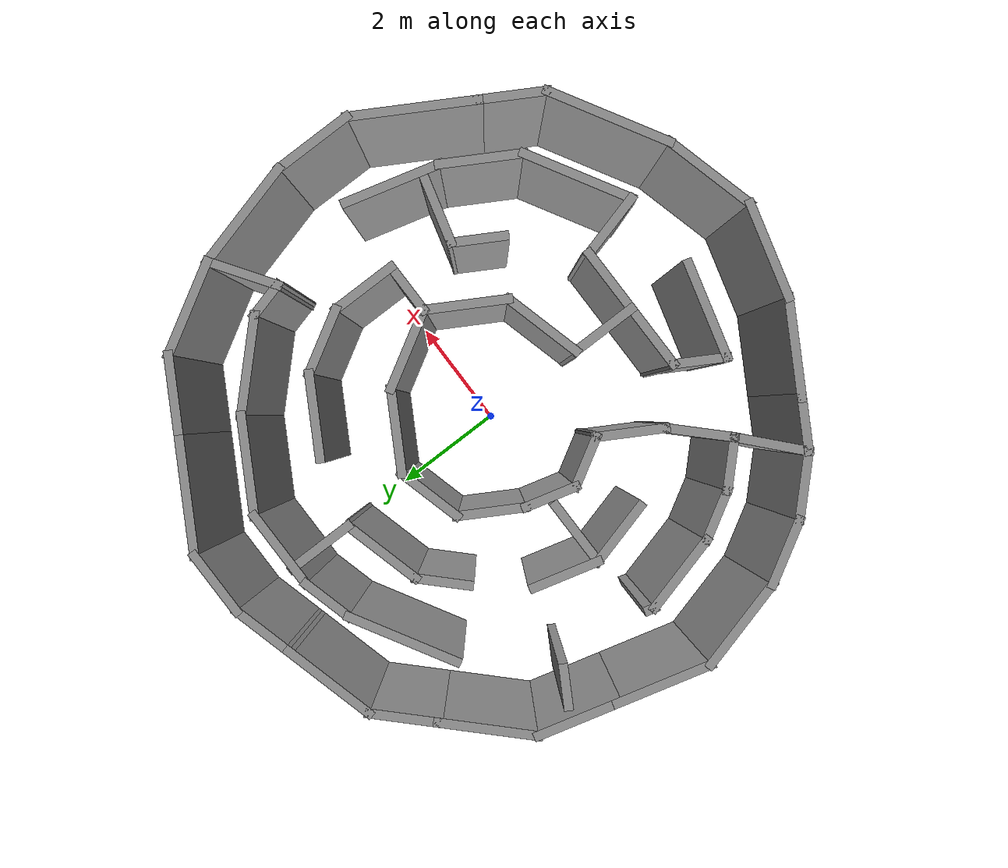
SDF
<?xml version='1.0'?>
<sdf version='1.7'>
  <model name='circleMap'>
    <pose>-0.024629 -0.104277 0 0 -0 0</pose>
    <link name='Wall_0'>
      <collision name='Wall_0_Collision'>
        <geometry>
          <box>
            <size>1.25 0.15 2.5</size>
          </box>
        </geometry>
        <pose>0 0 1.25 0 -0 0</pose>
      </collision>
      <visual name='Wall_0_Visual'>
        <pose>0 0 1.25 0 -0 0</pose>
        <geometry>
          <box>
            <size>1.25 0.15 2.5</size>
          </box>
        </geometry>
        <material>
          <script>
            <uri>file://media/materials/scripts/gazebo.material</uri>
            <name>Gazebo/Grey</name>
          </script>
          <ambient>1 1 1 1</ambient>
        </material>
        <meta>
          <layer>0</layer>
        </meta>
      </visual>
      <pose>0.581259 5.1737 0 0 -0 0</pose>
    </link>
    <link name='Wall_1'>
      <collision name='Wall_1_Collision'>
        <geometry>
          <box>
            <size>2 0.15 2.5</size>
          </box>
        </geometry>
        <pose>0 0 1.25 0 -0 0</pose>
      </collision>
      <visual name='Wall_1_Visual'>
        <pose>0 0 1.25 0 -0 0</pose>
        <geometry>
          <box>
            <size>2 0.15 2.5</size>
          </box>
        </geometry>
        <material>
          <script>
            <uri>file://media/materials/scripts/gazebo.material</uri>
            <name>Gazebo/Grey</name>
          </script>
          <ambient>1 1 1 1</ambient>
        </material>
        <meta>
          <layer>0</layer>
        </meta>
      </visual>
      <pose>1.93233 4.7112 0 0 -0 -0.523599</pose>
    </link>
    <link name='Wall_10'>
      <collision name='Wall_10_Collision'>
        <geometry>
          <box>
            <size>1.75 0.15 2.5</size>
          </box>
        </geometry>
        <pose>0 0 1.25 0 -0 0</pose>
      </collision>
      <visual name='Wall_10_Visual'>
        <pose>0 0 1.25 0 -0 0</pose>
        <geometry>
          <box>
            <size>1.75 0.15 2.5</size>
          </box>
        </geometry>
        <material>
          <script>
            <uri>file://media/materials/scripts/gazebo.material</uri>
            <name>Gazebo/Grey</name>
          </script>
          <ambient>1 1 1 1</ambient>
        </material>
        <meta>
          <layer>0</layer>
        </meta>
      </visual>
      <pose>-0.55552 -4.97724 0 0 -0 2.87979</pose>
    </link>
    <link name='Wall_11'>
      <collision name='Wall_11_Collision'>
        <geometry>
          <box>
            <size>1.75 0.15 2.5</size>
          </box>
        </geometry>
        <pose>0 0 1.25 0 -0 0</pose>
      </collision>
      <visual name='Wall_11_Visual'>
        <pose>0 0 1.25 0 -0 0</pose>
        <geometry>
          <box>
            <size>1.75 0.15 2.5</size>
          </box>
        </geometry>
        <material>
          <script>
            <uri>file://media/materials/scripts/gazebo.material</uri>
            <name>Gazebo/Grey</name>
          </script>
          <ambient>1 1 1 1</ambient>
        </material>
        <meta>
          <layer>0</layer>
        </meta>
      </visual>
      <pose>-2.02108 -4.37019 0 0 -0 2.61799</pose>
    </link>
    <link name='Wall_12'>
      <collision name='Wall_12_Collision'>
        <geometry>
          <box>
            <size>1 0.15 2.5</size>
          </box>
        </geometry>
        <pose>0 0 1.25 0 -0 0</pose>
      </collision>
      <visual name='Wall_12_Visual'>
        <pose>0 0 1.25 0 -0 0</pose>
        <geometry>
          <box>
            <size>1 0.15 2.5</size>
          </box>
        </geometry>
        <material>
          <script>
            <uri>file://media/materials/scripts/gazebo.material</uri>
            <name>Gazebo/Grey</name>
          </script>
          <ambient>1 1 1 1</ambient>
        </material>
        <meta>
          <layer>0</layer>
        </meta>
      </visual>
      <pose>-3.08196 -3.75768 0 0 -0 2.61799</pose>
    </link>
    <link name='Wall_13'>
      <collision name='Wall_13_Collision'>
        <geometry>
          <box>
            <size>1.25 0.15 2.5</size>
          </box>
        </geometry>
        <pose>0 0 1.25 0 -0 0</pose>
      </collision>
      <visual name='Wall_13_Visual'>
        <pose>0 0 1.25 0 -0 0</pose>
        <geometry>
          <box>
            <size>1.25 0.15 2.5</size>
          </box>
        </geometry>
        <material>
          <script>
            <uri>file://media/materials/scripts/gazebo.material</uri>
            <name>Gazebo/Grey</name>
          </script>
          <ambient>1 1 1 1</ambient>
        </material>
        <meta>
          <layer>0</layer>
        </meta>
      </visual>
      <pose>-3.83893 -3.15628 0 0 -0 2.35619</pose>
    </link>
    <link name='Wall_14'>
      <collision name='Wall_14_Collision'>
        <geometry>
          <box>
            <size>1.25 0.15 2.5</size>
          </box>
        </geometry>
        <pose>0 0 1.25 0 -0 0</pose>
      </collision>
      <visual name='Wall_14_Visual'>
        <pose>0 0 1.25 0 -0 0</pose>
        <geometry>
          <box>
            <size>1.25 0.15 2.5</size>
          </box>
        </geometry>
        <material>
          <script>
            <uri>file://media/materials/scripts/gazebo.material</uri>
            <name>Gazebo/Grey</name>
          </script>
          <ambient>1 1 1 1</ambient>
        </material>
        <meta>
          <layer>0</layer>
        </meta>
      </visual>
      <pose>-4.50284 -2.29105 0 0 -0 2.0944</pose>
    </link>
    <link name='Wall_15'>
      <collision name='Wall_15_Collision'>
        <geometry>
          <box>
            <size>1.75 0.15 2.5</size>
          </box>
        </geometry>
        <pose>0 0 1.25 0 -0 0</pose>
      </collision>
      <visual name='Wall_15_Visual'>
        <pose>0 0 1.25 0 -0 0</pose>
        <geometry>
          <box>
            <size>1.75 0.15 2.5</size>
          </box>
        </geometry>
        <material>
          <script>
            <uri>file://media/materials/scripts/gazebo.material</uri>
            <name>Gazebo/Grey</name>
          </script>
          <ambient>1 1 1 1</ambient>
        </material>
        <meta>
          <layer>0</layer>
        </meta>
      </visual>
      <pose>-4.9849 -1.042 0 0 -0 1.8326</pose>
    </link>
    <link name='Wall_16'>
      <collision name='Wall_16_Collision'>
        <geometry>
          <box>
            <size>1.75 0.15 2.5</size>
          </box>
        </geometry>
        <pose>0 0 1.25 0 -0 0</pose>
      </collision>
      <visual name='Wall_16_Visual'>
        <pose>0 0 1.25 0 -0 0</pose>
        <geometry>
          <box>
            <size>1.75 0.15 2.5</size>
          </box>
        </geometry>
        <material>
          <script>
            <uri>file://media/materials/scripts/gazebo.material</uri>
            <name>Gazebo/Grey</name>
          </script>
          <ambient>1 1 1 1</ambient>
        </material>
        <meta>
          <layer>0</layer>
        </meta>
      </visual>
      <pose>-4.9849 0.503482 0 0 -0 1.309</pose>
    </link>
    <link name='Wall_17'>
      <collision name='Wall_17_Collision'>
        <geometry>
          <box>
            <size>1.5 0.15 2.5</size>
          </box>
        </geometry>
        <pose>0 0 1.25 0 -0 0</pose>
      </collision>
      <visual name='Wall_17_Visual'>
        <pose>0 0 1.25 0 -0 0</pose>
        <geometry>
          <box>
            <size>1.5 0.15 2.5</size>
          </box>
        </geometry>
        <material>
          <script>
            <uri>file://media/materials/scripts/gazebo.material</uri>
            <name>Gazebo/Grey</name>
          </script>
          <ambient>1 1 1 1</ambient>
        </material>
        <meta>
          <layer>0</layer>
        </meta>
      </visual>
      <pose>-4.60314 1.92822 0 0 -0 1.309</pose>
    </link>
    <link name='Wall_18'>
      <collision name='Wall_18_Collision'>
        <geometry>
          <box>
            <size>1.75 0.15 2.5</size>
          </box>
        </geometry>
        <pose>0 0 1.25 0 -0 0</pose>
      </collision>
      <visual name='Wall_18_Visual'>
        <pose>0 0 1.25 0 -0 0</pose>
        <geometry>
          <box>
            <size>1.75 0.15 2.5</size>
          </box>
        </geometry>
        <material>
          <script>
            <uri>file://media/materials/scripts/gazebo.material</uri>
            <name>Gazebo/Grey</name>
          </script>
          <ambient>1 1 1 1</ambient>
        </material>
        <meta>
          <layer>0</layer>
        </meta>
      </visual>
      <pose>-3.86275 3.14591 0 0 -0 0.785398</pose>
    </link>
    <link name='Wall_19'>
      <collision name='Wall_19_Collision'>
        <geometry>
          <box>
            <size>1.25 0.15 2.5</size>
          </box>
        </geometry>
        <pose>0 0 1.25 0 -0 0</pose>
      </collision>
      <visual name='Wall_19_Visual'>
        <pose>0 0 1.25 0 -0 0</pose>
        <geometry>
          <box>
            <size>1.25 0.15 2.5</size>
          </box>
        </geometry>
        <material>
          <script>
            <uri>file://media/materials/scripts/gazebo.material</uri>
            <name>Gazebo/Grey</name>
          </script>
          <ambient>1 1 1 1</ambient>
        </material>
        <meta>
          <layer>0</layer>
        </meta>
      </visual>
      <pose>-2.90815 4.1005 0 0 -0 0.785398</pose>
    </link>
    <link name='Wall_2'>
      <collision name='Wall_2_Collision'>
        <geometry>
          <box>
            <size>1.5 0.15 2.5</size>
          </box>
        </geometry>
        <pose>0 0 1.25 0 -0 0</pose>
      </collision>
      <visual name='Wall_2_Visual'>
        <pose>0 0 1.25 0 -0 0</pose>
        <geometry>
          <box>
            <size>1.5 0.15 2.5</size>
          </box>
        </geometry>
        <material>
          <script>
            <uri>file://media/materials/scripts/gazebo.material</uri>
            <name>Gazebo/Grey</name>
          </script>
          <ambient>1 1 1 1</ambient>
        </material>
        <meta>
          <layer>0</layer>
        </meta>
      </visual>
      <pose>3.31797 3.9112 0 0 -0 -0.523599</pose>
    </link>
    <link name='Wall_20'>
      <collision name='Wall_20_Collision'>
        <geometry>
          <box>
            <size>1.75 0.15 2.5</size>
          </box>
        </geometry>
        <pose>0 0 1.25 0 -0 0</pose>
      </collision>
      <visual name='Wall_20_Visual'>
        <pose>0 0 1.25 0 -0 0</pose>
        <geometry>
          <box>
            <size>1.75 0.15 2.5</size>
          </box>
        </geometry>
        <material>
          <script>
            <uri>file://media/materials/scripts/gazebo.material</uri>
            <name>Gazebo/Grey</name>
          </script>
          <ambient>1 1 1 1</ambient>
        </material>
        <meta>
          <layer>0</layer>
        </meta>
      </visual>
      <pose>-1.74651 4.69647 0 0 -0 0.261799</pose>
    </link>
    <link name='Wall_21'>
      <collision name='Wall_21_Collision'>
        <geometry>
          <box>
            <size>1.19071 0.15 2.5</size>
          </box>
        </geometry>
        <pose>0 0 1.25 0 -0 0</pose>
      </collision>
      <visual name='Wall_21_Visual'>
        <pose>0 0 1.25 0 -0 0</pose>
        <geometry>
          <box>
            <size>1.19071 0.15 2.5</size>
          </box>
        </geometry>
        <material>
          <script>
            <uri>file://media/materials/scripts/gazebo.material</uri>
            <name>Gazebo/Grey</name>
          </script>
          <ambient>1 1 1 1</ambient>
        </material>
        <meta>
          <layer>0</layer>
        </meta>
      </visual>
      <pose>-0.471253 5.03861 0 0 -0 0.262619</pose>
    </link>
    <link name='Wall_22'>
      <collision name='Wall_22_Collision'>
        <geometry>
          <box>
            <size>1.25 0.15 2.5</size>
          </box>
        </geometry>
        <pose>0 0 1.25 0 -0 0</pose>
      </collision>
      <visual name='Wall_22_Visual'>
        <pose>0 0 1.25 0 -0 0</pose>
        <geometry>
          <box>
            <size>1.25 0.15 2.5</size>
          </box>
        </geometry>
        <material>
          <script>
            <uri>file://media/materials/scripts/gazebo.material</uri>
            <name>Gazebo/Grey</name>
          </script>
          <ambient>1 1 1 1</ambient>
        </material>
        <meta>
          <layer>0</layer>
        </meta>
      </visual>
      <pose>0.581259 5.1737 0 0 -0 0</pose>
    </link>
    <link name='Wall_24'>
      <collision name='Wall_24_Collision'>
        <geometry>
          <box>
            <size>0.75 0.15 2.5</size>
          </box>
        </geometry>
        <pose>0 0 1.25 0 -0 0</pose>
      </collision>
      <visual name='Wall_24_Visual'>
        <pose>0 0 1.25 0 -0 0</pose>
        <geometry>
          <box>
            <size>0.75 0.15 2.5</size>
          </box>
        </geometry>
        <material>
          <script>
            <uri>file://media/materials/scripts/gazebo.material</uri>
            <name>Gazebo/Grey</name>
          </script>
          <ambient>1 1 1 1</ambient>
        </material>
        <meta>
          <layer>0</layer>
        </meta>
      </visual>
      <pose>-4.08218 1.76703 0 0 -0 -0.523599</pose>
    </link>
    <link name='Wall_26'>
      <collision name='Wall_26_Collision'>
        <geometry>
          <box>
            <size>2 0.15 2.5</size>
          </box>
        </geometry>
        <pose>0 0 1.25 0 -0 0</pose>
      </collision>
      <visual name='Wall_26_Visual'>
        <pose>0 0 1.25 0 -0 0</pose>
        <geometry>
          <box>
            <size>2 0.15 2.5</size>
          </box>
        </geometry>
        <material>
          <script>
            <uri>file://media/materials/scripts/gazebo.material</uri>
            <name>Gazebo/Grey</name>
          </script>
          <ambient>1 1 1 1</ambient>
        </material>
        <meta>
          <layer>0</layer>
        </meta>
      </visual>
      <pose>-1.91258 3.35653 0 0 -0 0.523599</pose>
    </link>
    <link name='Wall_27'>
      <collision name='Wall_27_Collision'>
        <geometry>
          <box>
            <size>1 0.15 2.5</size>
          </box>
        </geometry>
        <pose>0 0 1.25 0 -0 0</pose>
      </collision>
      <visual name='Wall_27_Visual'>
        <pose>0 0 1.25 0 -0 0</pose>
        <geometry>
          <box>
            <size>1 0.15 2.5</size>
          </box>
        </geometry>
        <material>
          <script>
            <uri>file://media/materials/scripts/gazebo.material</uri>
            <name>Gazebo/Grey</name>
          </script>
          <ambient>1 1 1 1</ambient>
        </material>
        <meta>
          <layer>0</layer>
        </meta>
      </visual>
      <pose>-0.700987 3.92903 0 0 -0 0.261799</pose>
    </link>
    <link name='Wall_28'>
      <collision name='Wall_28_Collision'>
        <geometry>
          <box>
            <size>1.5 0.15 2.5</size>
          </box>
        </geometry>
        <pose>0 0 1.25 0 -0 0</pose>
      </collision>
      <visual name='Wall_28_Visual'>
        <pose>0 0 1.25 0 -0 0</pose>
        <geometry>
          <box>
            <size>1.5 0.15 2.5</size>
          </box>
        </geometry>
        <material>
          <script>
            <uri>file://media/materials/scripts/gazebo.material</uri>
            <name>Gazebo/Grey</name>
          </script>
          <ambient>1 1 1 1</ambient>
        </material>
        <meta>
          <layer>0</layer>
        </meta>
      </visual>
      <pose>0.384532 4.03902 0 0 -0 0</pose>
    </link>
    <link name='Wall_29'>
      <collision name='Wall_29_Collision'>
        <geometry>
          <box>
            <size>1.75 0.15 2.5</size>
          </box>
        </geometry>
        <pose>0 0 1.25 0 -0 0</pose>
      </collision>
      <visual name='Wall_29_Visual'>
        <pose>0 0 1.25 0 -0 0</pose>
        <geometry>
          <box>
            <size>1.75 0.15 2.5</size>
          </box>
        </geometry>
        <material>
          <script>
            <uri>file://media/materials/scripts/gazebo.material</uri>
            <name>Gazebo/Grey</name>
          </script>
          <ambient>1 1 1 1</ambient>
        </material>
        <meta>
          <layer>0</layer>
        </meta>
      </visual>
      <pose>1.75235 3.63902 0 0 -0 -0.523599</pose>
    </link>
    <link name='Wall_3'>
      <collision name='Wall_3_Collision'>
        <geometry>
          <box>
            <size>1.75 0.15 2.5</size>
          </box>
        </geometry>
        <pose>0 0 1.25 0 -0 0</pose>
      </collision>
      <visual name='Wall_3_Visual'>
        <pose>0 0 1.25 0 -0 0</pose>
        <geometry>
          <box>
            <size>1.75 0.15 2.5</size>
          </box>
        </geometry>
        <material>
          <script>
            <uri>file://media/materials/scripts/gazebo.material</uri>
            <name>Gazebo/Grey</name>
          </script>
          <ambient>1 1 1 1</ambient>
        </material>
        <meta>
          <layer>0</layer>
        </meta>
      </visual>
      <pose>4.30254 2.88088 0 0 -0 -1.0472</pose>
    </link>
    <link name='Wall_30'>
      <collision name='Wall_30_Collision'>
        <geometry>
          <box>
            <size>1.75 0.15 2.5</size>
          </box>
        </geometry>
        <pose>0 0 1.25 0 -0 0</pose>
      </collision>
      <visual name='Wall_30_Visual'>
        <pose>0 0 1.25 0 -0 0</pose>
        <geometry>
          <box>
            <size>1.75 0.15 2.5</size>
          </box>
        </geometry>
        <material>
          <script>
            <uri>file://media/materials/scripts/gazebo.material</uri>
            <name>Gazebo/Grey</name>
          </script>
          <ambient>1 1 1 1</ambient>
        </material>
        <meta>
          <layer>0</layer>
        </meta>
      </visual>
      <pose>3.01086 2.67334 0 0 -0 -0.785398</pose>
    </link>
    <link name='Wall_31'>
      <collision name='Wall_31_Collision'>
        <geometry>
          <box>
            <size>0.75 0.15 2.5</size>
          </box>
        </geometry>
        <pose>0 0 1.25 0 -0 0</pose>
      </collision>
      <visual name='Wall_31_Visual'>
        <pose>0 0 1.25 0 -0 0</pose>
        <geometry>
          <box>
            <size>0.75 0.15 2.5</size>
          </box>
        </geometry>
        <material>
          <script>
            <uri>file://media/materials/scripts/gazebo.material</uri>
            <name>Gazebo/Grey</name>
          </script>
          <ambient>1 1 1 1</ambient>
        </material>
        <meta>
          <layer>0</layer>
        </meta>
      </visual>
      <pose>3.65419 1.81787 0 0 -0 -1.309</pose>
    </link>
    <link name='Wall_32'>
      <collision name='Wall_32_Collision'>
        <geometry>
          <box>
            <size>1.3238 0.15 2.5</size>
          </box>
        </geometry>
        <pose>0 0 1.25 0 -0 0</pose>
      </collision>
      <visual name='Wall_32_Visual'>
        <pose>0 0 1.25 0 -0 0</pose>
        <geometry>
          <box>
            <size>1.3238 0.15 2.5</size>
          </box>
        </geometry>
        <material>
          <script>
            <uri>file://media/materials/scripts/gazebo.material</uri>
            <name>Gazebo/Grey</name>
          </script>
          <ambient>1 1 1 1</ambient>
        </material>
        <meta>
          <layer>0</layer>
        </meta>
      </visual>
      <pose>4.21719 1.85808 0 0 -0 0.597093</pose>
    </link>
    <link name='Wall_34'>
      <collision name='Wall_34_Collision'>
        <geometry>
          <box>
            <size>1.25 0.15 2.5</size>
          </box>
        </geometry>
        <pose>0 0 1.25 0 -0 0</pose>
      </collision>
      <visual name='Wall_34_Visual'>
        <pose>0 0 1.25 0 -0 0</pose>
        <geometry>
          <box>
            <size>1.25 0.15 2.5</size>
          </box>
        </geometry>
        <material>
          <script>
            <uri>file://media/materials/scripts/gazebo.material</uri>
            <name>Gazebo/Grey</name>
          </script>
          <ambient>1 1 1 1</ambient>
        </material>
        <meta>
          <layer>0</layer>
        </meta>
      </visual>
      <pose>0.031259 3.50713 0 0 -0 -1.5708</pose>
    </link>
    <link name='Wall_35'>
      <collision name='Wall_35_Collision'>
        <geometry>
          <box>
            <size>1.5 0.15 2.5</size>
          </box>
        </geometry>
        <pose>0 0 1.25 0 -0 0</pose>
      </collision>
      <visual name='Wall_35_Visual'>
        <pose>0 0 1.25 0 -0 0</pose>
        <geometry>
          <box>
            <size>1.5 0.15 2.5</size>
          </box>
        </geometry>
        <material>
          <script>
            <uri>file://media/materials/scripts/gazebo.material</uri>
            <name>Gazebo/Grey</name>
          </script>
          <ambient>1 1 1 1</ambient>
        </material>
        <meta>
          <layer>0</layer>
        </meta>
      </visual>
      <pose>-0.620741 2.78242 0 0 -0 -2.87979</pose>
    </link>
    <link name='Wall_36'>
      <collision name='Wall_36_Collision'>
        <geometry>
          <box>
            <size>1 0.15 2.5</size>
          </box>
        </geometry>
        <pose>0 0 1.25 0 -0 0</pose>
      </collision>
      <visual name='Wall_36_Visual'>
        <pose>0 0 1.25 0 -0 0</pose>
        <geometry>
          <box>
            <size>1 0.15 2.5</size>
          </box>
        </geometry>
        <material>
          <script>
            <uri>file://media/materials/scripts/gazebo.material</uri>
            <name>Gazebo/Grey</name>
          </script>
          <ambient>1 1 1 1</ambient>
        </material>
        <meta>
          <layer>0</layer>
        </meta>
      </visual>
      <pose>-1.57326 2.3072 0 0 -0 -2.35619</pose>
    </link>
    <link name='Wall_39'>
      <collision name='Wall_39_Collision'>
        <geometry>
          <box>
            <size>1.5 0.15 2.5</size>
          </box>
        </geometry>
        <pose>0 0 1.25 0 -0 0</pose>
      </collision>
      <visual name='Wall_39_Visual'>
        <pose>0 0 1.25 0 -0 0</pose>
        <geometry>
          <box>
            <size>1.5 0.15 2.5</size>
          </box>
        </geometry>
        <material>
          <script>
            <uri>file://media/materials/scripts/gazebo.material</uri>
            <name>Gazebo/Grey</name>
          </script>
          <ambient>1 1 1 1</ambient>
        </material>
        <meta>
          <layer>0</layer>
        </meta>
      </visual>
      <pose>1.7324 2.32391 0 0 -0 -0.523599</pose>
    </link>
    <link name='Wall_4'>
      <collision name='Wall_4_Collision'>
        <geometry>
          <box>
            <size>2 0.15 2.5</size>
          </box>
        </geometry>
        <pose>0 0 1.25 0 -0 0</pose>
      </collision>
      <visual name='Wall_4_Visual'>
        <pose>0 0 1.25 0 -0 0</pose>
        <geometry>
          <box>
            <size>2 0.15 2.5</size>
          </box>
        </geometry>
        <material>
          <script>
            <uri>file://media/materials/scripts/gazebo.material</uri>
            <name>Gazebo/Grey</name>
          </script>
          <ambient>1 1 1 1</ambient>
        </material>
        <meta>
          <layer>0</layer>
        </meta>
      </visual>
      <pose>4.94195 1.29458 0 0 -0 -1.309</pose>
    </link>
    <link name='Wall_40'>
      <collision name='Wall_40_Collision'>
        <geometry>
          <box>
            <size>1.25 0.15 2.5</size>
          </box>
        </geometry>
        <pose>0 0 1.25 0 -0 0</pose>
      </collision>
      <visual name='Wall_40_Visual'>
        <pose>0 0 1.25 0 -0 0</pose>
        <geometry>
          <box>
            <size>1.25 0.15 2.5</size>
          </box>
        </geometry>
        <material>
          <script>
            <uri>file://media/materials/scripts/gazebo.material</uri>
            <name>Gazebo/Grey</name>
          </script>
          <ambient>1 1 1 1</ambient>
        </material>
        <meta>
          <layer>0</layer>
        </meta>
      </visual>
      <pose>2.59197 1.51009 0 0 -0 -1.0472</pose>
    </link>
    <link name='Wall_41'>
      <collision name='Wall_41_Collision'>
        <geometry>
          <box>
            <size>1.25 0.15 2.5</size>
          </box>
        </geometry>
        <pose>0 0 1.25 0 -0 0</pose>
      </collision>
      <visual name='Wall_41_Visual'>
        <pose>0 0 1.25 0 -0 0</pose>
        <geometry>
          <box>
            <size>1.25 0.15 2.5</size>
          </box>
        </geometry>
        <material>
          <script>
            <uri>file://media/materials/scripts/gazebo.material</uri>
            <name>Gazebo/Grey</name>
          </script>
          <ambient>1 1 1 1</ambient>
        </material>
        <meta>
          <layer>0</layer>
        </meta>
      </visual>
      <pose>2.86697 0.48378 0 0 -0 -1.5708</pose>
    </link>
    <link name='Wall_42'>
      <collision name='Wall_42_Collision'>
        <geometry>
          <box>
            <size>1 0.15 2.5</size>
          </box>
        </geometry>
        <pose>0 0 1.25 0 -0 0</pose>
      </collision>
      <visual name='Wall_42_Visual'>
        <pose>0 0 1.25 0 -0 0</pose>
        <geometry>
          <box>
            <size>1 0.15 2.5</size>
          </box>
        </geometry>
        <material>
          <script>
            <uri>file://media/materials/scripts/gazebo.material</uri>
            <name>Gazebo/Grey</name>
          </script>
          <ambient>1 1 1 1</ambient>
        </material>
        <meta>
          <layer>0</layer>
        </meta>
      </visual>
      <pose>2.44197 -0.06622 0 0 -0 3.14159</pose>
    </link>
    <link name='Wall_43'>
      <collision name='Wall_43_Collision'>
        <geometry>
          <box>
            <size>0.15 0.15 2.5</size>
          </box>
        </geometry>
        <pose>0 0 1.25 0 -0 0</pose>
      </collision>
      <visual name='Wall_43_Visual'>
        <pose>0 0 1.25 0 -0 0</pose>
        <geometry>
          <box>
            <size>0.15 0.15 2.5</size>
          </box>
        </geometry>
        <material>
          <script>
            <uri>file://media/materials/scripts/gazebo.material</uri>
            <name>Gazebo/Grey</name>
          </script>
          <ambient>1 1 1 1</ambient>
        </material>
        <meta>
          <layer>0</layer>
        </meta>
      </visual>
      <pose>2.01697 -0.06622 0 0 -0 0</pose>
    </link>
    <link name='Wall_44'>
      <collision name='Wall_44_Collision'>
        <geometry>
          <box>
            <size>0.15 0.15 2.5</size>
          </box>
        </geometry>
        <pose>0 0 1.25 0 -0 0</pose>
      </collision>
      <visual name='Wall_44_Visual'>
        <pose>0 0 1.25 0 -0 0</pose>
        <geometry>
          <box>
            <size>0.15 0.15 2.5</size>
          </box>
        </geometry>
        <material>
          <script>
            <uri>file://media/materials/scripts/gazebo.material</uri>
            <name>Gazebo/Grey</name>
          </script>
          <ambient>1 1 1 1</ambient>
        </material>
        <meta>
          <layer>0</layer>
        </meta>
      </visual>
      <pose>2.01697 -0.06622 0 0 -0 0</pose>
    </link>
    <link name='Wall_45'>
      <collision name='Wall_45_Collision'>
        <geometry>
          <box>
            <size>1.5 0.15 2.5</size>
          </box>
        </geometry>
        <pose>0 0 1.25 0 -0 0</pose>
      </collision>
      <visual name='Wall_45_Visual'>
        <pose>0 0 1.25 0 -0 0</pose>
        <geometry>
          <box>
            <size>1.5 0.15 2.5</size>
          </box>
        </geometry>
        <material>
          <script>
            <uri>file://media/materials/scripts/gazebo.material</uri>
            <name>Gazebo/Grey</name>
          </script>
          <ambient>1 1 1 1</ambient>
        </material>
        <meta>
          <layer>0</layer>
        </meta>
      </visual>
      <pose>1.67947 -0.650787 0 0 -0 -2.0944</pose>
    </link>
    <link name='Wall_46'>
      <collision name='Wall_46_Collision'>
        <geometry>
          <box>
            <size>1.5 0.15 2.5</size>
          </box>
        </geometry>
        <pose>0 0 1.25 0 -0 0</pose>
      </collision>
      <visual name='Wall_46_Visual'>
        <pose>0 0 1.25 0 -0 0</pose>
        <geometry>
          <box>
            <size>1.5 0.15 2.5</size>
          </box>
        </geometry>
        <material>
          <script>
            <uri>file://media/materials/scripts/gazebo.material</uri>
            <name>Gazebo/Grey</name>
          </script>
          <ambient>1 1 1 1</ambient>
        </material>
        <meta>
          <layer>0</layer>
        </meta>
      </visual>
      <pose>0.689967 -1.41006 0 0 -0 -2.87979</pose>
    </link>
    <link name='Wall_47'>
      <collision name='Wall_47_Collision'>
        <geometry>
          <box>
            <size>1.25 0.15 2.5</size>
          </box>
        </geometry>
        <pose>0 0 1.25 0 -0 0</pose>
      </collision>
      <visual name='Wall_47_Visual'>
        <pose>0 0 1.25 0 -0 0</pose>
        <geometry>
          <box>
            <size>1.25 0.15 2.5</size>
          </box>
        </geometry>
        <material>
          <script>
            <uri>file://media/materials/scripts/gazebo.material</uri>
            <name>Gazebo/Grey</name>
          </script>
          <ambient>1 1 1 1</ambient>
        </material>
        <meta>
          <layer>0</layer>
        </meta>
      </visual>
      <pose>0.037967 -2.13476 0 0 -0 -1.5708</pose>
    </link>
    <link name='Wall_49'>
      <collision name='Wall_49_Collision'>
        <geometry>
          <box>
            <size>1.5 0.15 2.5</size>
          </box>
        </geometry>
        <pose>0 0 1.25 0 -0 0</pose>
      </collision>
      <visual name='Wall_49_Visual'>
        <pose>0 0 1.25 0 -0 0</pose>
        <geometry>
          <box>
            <size>1.5 0.15 2.5</size>
          </box>
        </geometry>
        <material>
          <script>
            <uri>file://media/materials/scripts/gazebo.material</uri>
            <name>Gazebo/Grey</name>
          </script>
          <ambient>1 1 1 1</ambient>
        </material>
        <meta>
          <layer>0</layer>
        </meta>
      </visual>
      <pose>1.67947 0.518347 0 0 -0 2.0944</pose>
    </link>
    <link name='Wall_5'>
      <collision name='Wall_5_Collision'>
        <geometry>
          <box>
            <size>1.5 0.15 2.5</size>
          </box>
        </geometry>
        <pose>0 0 1.25 0 -0 0</pose>
      </collision>
      <visual name='Wall_5_Visual'>
        <pose>0 0 1.25 0 -0 0</pose>
        <geometry>
          <box>
            <size>1.5 0.15 2.5</size>
          </box>
        </geometry>
        <material>
          <script>
            <uri>file://media/materials/scripts/gazebo.material</uri>
            <name>Gazebo/Grey</name>
          </script>
          <ambient>1 1 1 1</ambient>
        </material>
        <meta>
          <layer>0</layer>
        </meta>
      </visual>
      <pose>5.18135 -0.273904 0 0 -0 -1.5708</pose>
    </link>
    <link name='Wall_50'>
      <collision name='Wall_50_Collision'>
        <geometry>
          <box>
            <size>1.5 0.15 2.5</size>
          </box>
        </geometry>
        <pose>0 0 1.25 0 -0 0</pose>
      </collision>
      <visual name='Wall_50_Visual'>
        <pose>0 0 1.25 0 -0 0</pose>
        <geometry>
          <box>
            <size>1.5 0.15 2.5</size>
          </box>
        </geometry>
        <material>
          <script>
            <uri>file://media/materials/scripts/gazebo.material</uri>
            <name>Gazebo/Grey</name>
          </script>
          <ambient>1 1 1 1</ambient>
        </material>
        <meta>
          <layer>0</layer>
        </meta>
      </visual>
      <pose>0.7574 1.44041 0 0 -0 2.61799</pose>
    </link>
    <link name='Wall_51'>
      <collision name='Wall_51_Collision'>
        <geometry>
          <box>
            <size>1.25 0.15 2.5</size>
          </box>
        </geometry>
        <pose>0 0 1.25 0 -0 0</pose>
      </collision>
      <visual name='Wall_51_Visual'>
        <pose>0 0 1.25 0 -0 0</pose>
        <geometry>
          <box>
            <size>1.25 0.15 2.5</size>
          </box>
        </geometry>
        <material>
          <script>
            <uri>file://media/materials/scripts/gazebo.material</uri>
            <name>Gazebo/Grey</name>
          </script>
          <ambient>1 1 1 1</ambient>
        </material>
        <meta>
          <layer>0</layer>
        </meta>
      </visual>
      <pose>-0.358427 1.63556 0 0 -0 -2.87979</pose>
    </link>
    <link name='Wall_52'>
      <collision name='Wall_52_Collision'>
        <geometry>
          <box>
            <size>1.25 0.15 2.5</size>
          </box>
        </geometry>
        <pose>0 0 1.25 0 -0 0</pose>
      </collision>
      <visual name='Wall_52_Visual'>
        <pose>0 0 1.25 0 -0 0</pose>
        <geometry>
          <box>
            <size>1.25 0.15 2.5</size>
          </box>
        </geometry>
        <material>
          <script>
            <uri>file://media/materials/scripts/gazebo.material</uri>
            <name>Gazebo/Grey</name>
          </script>
          <ambient>1 1 1 1</ambient>
        </material>
        <meta>
          <layer>0</layer>
        </meta>
      </visual>
      <pose>-1.16469 1.0169 0 0 -0 -2.0944</pose>
    </link>
    <link name='Wall_53'>
      <collision name='Wall_53_Collision'>
        <geometry>
          <box>
            <size>1 0.15 2.5</size>
          </box>
        </geometry>
        <pose>0 0 1.25 0 -0 0</pose>
      </collision>
      <visual name='Wall_53_Visual'>
        <pose>0 0 1.25 0 -0 0</pose>
        <geometry>
          <box>
            <size>1 0.15 2.5</size>
          </box>
        </geometry>
        <material>
          <script>
            <uri>file://media/materials/scripts/gazebo.material</uri>
            <name>Gazebo/Grey</name>
          </script>
          <ambient>1 1 1 1</ambient>
        </material>
        <meta>
          <layer>0</layer>
        </meta>
      </visual>
      <pose>-1.54968 0.130067 0 0 -0 -1.8326</pose>
    </link>
    <link name='Wall_54'>
      <collision name='Wall_54_Collision'>
        <geometry>
          <box>
            <size>1 0.15 2.5</size>
          </box>
        </geometry>
        <pose>0 0 1.25 0 -0 0</pose>
      </collision>
      <visual name='Wall_54_Visual'>
        <pose>0 0 1.25 0 -0 0</pose>
        <geometry>
          <box>
            <size>1 0.15 2.5</size>
          </box>
        </geometry>
        <material>
          <script>
            <uri>file://media/materials/scripts/gazebo.material</uri>
            <name>Gazebo/Grey</name>
          </script>
          <ambient>1 1 1 1</ambient>
        </material>
        <meta>
          <layer>0</layer>
        </meta>
      </visual>
      <pose>-1.44718 -0.648512 0 0 -0 -1.0472</pose>
    </link>
    <link name='Wall_55'>
      <collision name='Wall_55_Collision'>
        <geometry>
          <box>
            <size>1.25 0.15 2.5</size>
          </box>
        </geometry>
        <pose>0 0 1.25 0 -0 0</pose>
      </collision>
      <visual name='Wall_55_Visual'>
        <pose>0 0 1.25 0 -0 0</pose>
        <geometry>
          <box>
            <size>1.25 0.15 2.5</size>
          </box>
        </geometry>
        <material>
          <script>
            <uri>file://media/materials/scripts/gazebo.material</uri>
            <name>Gazebo/Grey</name>
          </script>
          <ambient>1 1 1 1</ambient>
        </material>
        <meta>
          <layer>0</layer>
        </meta>
      </visual>
      <pose>-1.50968 -1.49289 0 0 -0 -2.0944</pose>
    </link>
    <link name='Wall_56'>
      <collision name='Wall_56_Collision'>
        <geometry>
          <box>
            <size>1.25 0.15 2.5</size>
          </box>
        </geometry>
        <pose>0 0 1.25 0 -0 0</pose>
      </collision>
      <visual name='Wall_56_Visual'>
        <pose>0 0 1.25 0 -0 0</pose>
        <geometry>
          <box>
            <size>1.25 0.15 2.5</size>
          </box>
        </geometry>
        <material>
          <script>
            <uri>file://media/materials/scripts/gazebo.material</uri>
            <name>Gazebo/Grey</name>
          </script>
          <ambient>1 1 1 1</ambient>
        </material>
        <meta>
          <layer>0</layer>
        </meta>
      </visual>
      <pose>-2.17359 -2.35811 0 0 -0 -2.35619</pose>
    </link>
    <link name='Wall_57'>
      <collision name='Wall_57_Collision'>
        <geometry>
          <box>
            <size>1.34364 0.15 2.5</size>
          </box>
        </geometry>
        <pose>0 0 1.25 0 -0 0</pose>
      </collision>
      <visual name='Wall_57_Visual'>
        <pose>0 0 1.25 0 -0 0</pose>
        <geometry>
          <box>
            <size>1.34364 0.15 2.5</size>
          </box>
        </geometry>
        <material>
          <script>
            <uri>file://media/materials/scripts/gazebo.material</uri>
            <name>Gazebo/Grey</name>
          </script>
          <ambient>1 1 1 1</ambient>
        </material>
        <meta>
          <layer>0</layer>
        </meta>
      </visual>
      <pose>-3.00626 -3.1461 0 0 -0 -2.40915</pose>
    </link>
    <link name='Wall_59'>
      <collision name='Wall_59_Collision'>
        <geometry>
          <box>
            <size>1 0.15 2.5</size>
          </box>
        </geometry>
        <pose>0 0 1.25 0 -0 0</pose>
      </collision>
      <visual name='Wall_59_Visual'>
        <pose>0 0 1.25 0 -0 0</pose>
        <geometry>
          <box>
            <size>1 0.15 2.5</size>
          </box>
        </geometry>
        <material>
          <script>
            <uri>file://media/materials/scripts/gazebo.material</uri>
            <name>Gazebo/Grey</name>
          </script>
          <ambient>1 1 1 1</ambient>
        </material>
        <meta>
          <layer>0</layer>
        </meta>
      </visual>
      <pose>-2.86302 -2.4465 0 0 -0 2.35619</pose>
    </link>
    <link name='Wall_6'>
      <collision name='Wall_6_Collision'>
        <geometry>
          <box>
            <size>2.25 0.15 2.5</size>
          </box>
        </geometry>
        <pose>0 0 1.25 0 -0 0</pose>
      </collision>
      <visual name='Wall_6_Visual'>
        <pose>0 0 1.25 0 -0 0</pose>
        <geometry>
          <box>
            <size>2.25 0.15 2.5</size>
          </box>
        </geometry>
        <material>
          <script>
            <uri>file://media/materials/scripts/gazebo.material</uri>
            <name>Gazebo/Grey</name>
          </script>
          <ambient>1 1 1 1</ambient>
        </material>
        <meta>
          <layer>0</layer>
        </meta>
      </visual>
      <pose>4.65635 -1.85823 0 0 -0 -2.0944</pose>
    </link>
    <link name='Wall_60'>
      <collision name='Wall_60_Collision'>
        <geometry>
          <box>
            <size>1 0.15 2.5</size>
          </box>
        </geometry>
        <pose>0 0 1.25 0 -0 0</pose>
      </collision>
      <visual name='Wall_60_Visual'>
        <pose>0 0 1.25 0 -0 0</pose>
        <geometry>
          <box>
            <size>1 0.15 2.5</size>
          </box>
        </geometry>
        <material>
          <script>
            <uri>file://media/materials/scripts/gazebo.material</uri>
            <name>Gazebo/Grey</name>
          </script>
          <ambient>1 1 1 1</ambient>
        </material>
        <meta>
          <layer>0</layer>
        </meta>
      </visual>
      <pose>-3.37604 -1.77792 0 0 -0 2.0944</pose>
    </link>
    <link name='Wall_61'>
      <collision name='Wall_61_Collision'>
        <geometry>
          <box>
            <size>1.5 0.15 2.5</size>
          </box>
        </geometry>
        <pose>0 0 1.25 0 -0 0</pose>
      </collision>
      <visual name='Wall_61_Visual'>
        <pose>0 0 1.25 0 -0 0</pose>
        <geometry>
          <box>
            <size>1.5 0.15 2.5</size>
          </box>
        </geometry>
        <material>
          <script>
            <uri>file://media/materials/scripts/gazebo.material</uri>
            <name>Gazebo/Grey</name>
          </script>
          <ambient>1 1 1 1</ambient>
        </material>
        <meta>
          <layer>0</layer>
        </meta>
      </visual>
      <pose>-3.76324 -0.757856 0 0 -0 1.8326</pose>
    </link>
    <link name='Wall_62'>
      <collision name='Wall_62_Collision'>
        <geometry>
          <box>
            <size>0.25 0.15 2.5</size>
          </box>
        </geometry>
        <pose>0 0 1.25 0 -0 0</pose>
      </collision>
      <visual name='Wall_62_Visual'>
        <pose>0 0 1.25 0 -0 0</pose>
        <geometry>
          <box>
            <size>0.25 0.15 2.5</size>
          </box>
        </geometry>
        <material>
          <script>
            <uri>file://media/materials/scripts/gazebo.material</uri>
            <name>Gazebo/Grey</name>
          </script>
          <ambient>1 1 1 1</ambient>
        </material>
        <meta>
          <layer>0</layer>
        </meta>
      </visual>
      <pose>-3.92501 -0.05756 0 0 -0 1.309</pose>
    </link>
    <link name='Wall_64'>
      <collision name='Wall_64_Collision'>
        <geometry>
          <box>
            <size>1.25 0.15 2.5</size>
          </box>
        </geometry>
        <pose>0 0 1.25 0 -0 0</pose>
      </collision>
      <visual name='Wall_64_Visual'>
        <pose>0 0 1.25 0 -0 0</pose>
        <geometry>
          <box>
            <size>1.25 0.15 2.5</size>
          </box>
        </geometry>
        <material>
          <script>
            <uri>file://media/materials/scripts/gazebo.material</uri>
            <name>Gazebo/Grey</name>
          </script>
          <ambient>1 1 1 1</ambient>
        </material>
        <meta>
          <layer>0</layer>
        </meta>
      </visual>
      <pose>-2.66991 0.687908 0 0 -0 -1.8326</pose>
    </link>
    <link name='Wall_65'>
      <collision name='Wall_65_Collision'>
        <geometry>
          <box>
            <size>1.25 0.15 2.5</size>
          </box>
        </geometry>
        <pose>0 0 1.25 0 -0 0</pose>
      </collision>
      <visual name='Wall_65_Visual'>
        <pose>0 0 1.25 0 -0 0</pose>
        <geometry>
          <box>
            <size>1.25 0.15 2.5</size>
          </box>
        </geometry>
        <material>
          <script>
            <uri>file://media/materials/scripts/gazebo.material</uri>
            <name>Gazebo/Grey</name>
          </script>
          <ambient>1 1 1 1</ambient>
        </material>
        <meta>
          <layer>0</layer>
        </meta>
      </visual>
      <pose>-2.66991 -0.374611 0 0 -0 -1.309</pose>
    </link>
    <link name='Wall_67'>
      <collision name='Wall_67_Collision'>
        <geometry>
          <box>
            <size>1.25 0.15 2.5</size>
          </box>
        </geometry>
        <pose>0 0 1.25 0 -0 0</pose>
      </collision>
      <visual name='Wall_67_Visual'>
        <pose>0 0 1.25 0 -0 0</pose>
        <geometry>
          <box>
            <size>1.25 0.15 2.5</size>
          </box>
        </geometry>
        <material>
          <script>
            <uri>file://media/materials/scripts/gazebo.material</uri>
            <name>Gazebo/Grey</name>
          </script>
          <ambient>1 1 1 1</ambient>
        </material>
        <meta>
          <layer>0</layer>
        </meta>
      </visual>
      <pose>-2.26226 0.156648 0 0 -0 0</pose>
    </link>
    <link name='Wall_69'>
      <collision name='Wall_69_Collision'>
        <geometry>
          <box>
            <size>1.25 0.15 2.5</size>
          </box>
        </geometry>
        <pose>0 0 1.25 0 -0 0</pose>
      </collision>
      <visual name='Wall_69_Visual'>
        <pose>0 0 1.25 0 -0 0</pose>
        <geometry>
          <box>
            <size>1.25 0.15 2.5</size>
          </box>
        </geometry>
        <material>
          <script>
            <uri>file://media/materials/scripts/gazebo.material</uri>
            <name>Gazebo/Grey</name>
          </script>
          <ambient>1 1 1 1</ambient>
        </material>
        <meta>
          <layer>0</layer>
        </meta>
      </visual>
      <pose>-0.512033 -2.68476 0 0 -0 3.14159</pose>
    </link>
    <link name='Wall_7'>
      <collision name='Wall_7_Collision'>
        <geometry>
          <box>
            <size>1.25 0.15 2.5</size>
          </box>
        </geometry>
        <pose>0 0 1.25 0 -0 0</pose>
      </collision>
      <visual name='Wall_7_Visual'>
        <pose>0 0 1.25 0 -0 0</pose>
        <geometry>
          <box>
            <size>1.25 0.15 2.5</size>
          </box>
        </geometry>
        <material>
          <script>
            <uri>file://media/materials/scripts/gazebo.material</uri>
            <name>Gazebo/Grey</name>
          </script>
          <ambient>1 1 1 1</ambient>
        </material>
        <meta>
          <layer>0</layer>
        </meta>
      </visual>
      <pose>3.85636 -3.24387 0 0 -0 -2.0944</pose>
    </link>
    <link name='Wall_70'>
      <collision name='Wall_70_Collision'>
        <geometry>
          <box>
            <size>1 0.15 2.5</size>
          </box>
        </geometry>
        <pose>0 0 1.25 0 -0 0</pose>
      </collision>
      <visual name='Wall_70_Visual'>
        <pose>0 0 1.25 0 -0 0</pose>
        <geometry>
          <box>
            <size>1 0.15 2.5</size>
          </box>
        </geometry>
        <material>
          <script>
            <uri>file://media/materials/scripts/gazebo.material</uri>
            <name>Gazebo/Grey</name>
          </script>
          <ambient>1 1 1 1</ambient>
        </material>
        <meta>
          <layer>0</layer>
        </meta>
      </visual>
      <pose>-1.27453 -3.05282 0 0 -0 -2.0944</pose>
    </link>
    <link name='Wall_71'>
      <collision name='Wall_71_Collision'>
        <geometry>
          <box>
            <size>1.75 0.15 2.5</size>
          </box>
        </geometry>
        <pose>0 0 1.25 0 -0 0</pose>
      </collision>
      <visual name='Wall_71_Visual'>
        <pose>0 0 1.25 0 -0 0</pose>
        <geometry>
          <box>
            <size>1.75 0.15 2.5</size>
          </box>
        </geometry>
        <material>
          <script>
            <uri>file://media/materials/scripts/gazebo.material</uri>
            <name>Gazebo/Grey</name>
          </script>
          <ambient>1 1 1 1</ambient>
        </material>
        <meta>
          <layer>0</layer>
        </meta>
      </visual>
      <pose>-0.714292 -3.62794 0 0 -0 -0.261799</pose>
    </link>
    <link name='Wall_73'>
      <collision name='Wall_73_Collision'>
        <geometry>
          <box>
            <size>1.25 0.15 2.5</size>
          </box>
        </geometry>
        <pose>0 0 1.25 0 -0 0</pose>
      </collision>
      <visual name='Wall_73_Visual'>
        <pose>0 0 1.25 0 -0 0</pose>
        <geometry>
          <box>
            <size>1.25 0.15 2.5</size>
          </box>
        </geometry>
        <material>
          <script>
            <uri>file://media/materials/scripts/gazebo.material</uri>
            <name>Gazebo/Grey</name>
          </script>
          <ambient>1 1 1 1</ambient>
        </material>
        <meta>
          <layer>0</layer>
        </meta>
      </visual>
      <pose>0.587967 -2.68476 0 0 -0 0</pose>
    </link>
    <link name='Wall_74'>
      <collision name='Wall_74_Collision'>
        <geometry>
          <box>
            <size>1.25 0.15 2.5</size>
          </box>
        </geometry>
        <pose>0 0 1.25 0 -0 0</pose>
      </collision>
      <visual name='Wall_74_Visual'>
        <pose>0 0 1.25 0 -0 0</pose>
        <geometry>
          <box>
            <size>1.25 0.15 2.5</size>
          </box>
        </geometry>
        <material>
          <script>
            <uri>file://media/materials/scripts/gazebo.material</uri>
            <name>Gazebo/Grey</name>
          </script>
          <ambient>1 1 1 1</ambient>
        </material>
        <meta>
          <layer>0</layer>
        </meta>
      </visual>
      <pose>1.28032 -3.21602 0 0 -0 -1.309</pose>
    </link>
    <link name='Wall_75'>
      <collision name='Wall_75_Collision'>
        <geometry>
          <box>
            <size>2 0.15 2.5</size>
          </box>
        </geometry>
        <pose>0 0 1.25 0 -0 0</pose>
      </collision>
      <visual name='Wall_75_Visual'>
        <pose>0 0 1.25 0 -0 0</pose>
        <geometry>
          <box>
            <size>2 0.15 2.5</size>
          </box>
        </geometry>
        <material>
          <script>
            <uri>file://media/materials/scripts/gazebo.material</uri>
            <name>Gazebo/Grey</name>
          </script>
          <ambient>1 1 1 1</ambient>
        </material>
        <meta>
          <layer>0</layer>
        </meta>
      </visual>
      <pose>2.22374 -3.28478 0 0 -0 0.523599</pose>
    </link>
    <link name='Wall_76'>
      <collision name='Wall_76_Collision'>
        <geometry>
          <box>
            <size>1.5 0.15 2.5</size>
          </box>
        </geometry>
        <pose>0 0 1.25 0 -0 0</pose>
      </collision>
      <visual name='Wall_76_Visual'>
        <pose>0 0 1.25 0 -0 0</pose>
        <geometry>
          <box>
            <size>1.5 0.15 2.5</size>
          </box>
        </geometry>
        <material>
          <script>
            <uri>file://media/materials/scripts/gazebo.material</uri>
            <name>Gazebo/Grey</name>
          </script>
          <ambient>1 1 1 1</ambient>
        </material>
        <meta>
          <layer>0</layer>
        </meta>
      </visual>
      <pose>3.36232 -2.23771 0 0 -0 1.0472</pose>
    </link>
    <link name='Wall_77'>
      <collision name='Wall_77_Collision'>
        <geometry>
          <box>
            <size>1.75 0.15 2.5</size>
          </box>
        </geometry>
        <pose>0 0 1.25 0 -0 0</pose>
      </collision>
      <visual name='Wall_77_Visual'>
        <pose>0 0 1.25 0 -0 0</pose>
        <geometry>
          <box>
            <size>1.75 0.15 2.5</size>
          </box>
        </geometry>
        <material>
          <script>
            <uri>file://media/materials/scripts/gazebo.material</uri>
            <name>Gazebo/Grey</name>
          </script>
          <ambient>1 1 1 1</ambient>
        </material>
        <meta>
          <layer>0</layer>
        </meta>
      </visual>
      <pose>3.90687 -0.880403 0 0 -0 1.309</pose>
    </link>
    <link name='Wall_79'>
      <collision name='Wall_79_Collision'>
        <geometry>
          <box>
            <size>1.25 0.15 2.5</size>
          </box>
        </geometry>
        <pose>0 0 1.25 0 -0 0</pose>
      </collision>
      <visual name='Wall_79_Visual'>
        <pose>0 0 1.25 0 -0 0</pose>
        <geometry>
          <box>
            <size>1.25 0.15 2.5</size>
          </box>
        </geometry>
        <material>
          <script>
            <uri>file://media/materials/scripts/gazebo.material</uri>
            <name>Gazebo/Grey</name>
          </script>
          <ambient>1 1 1 1</ambient>
        </material>
        <meta>
          <layer>0</layer>
        </meta>
      </visual>
      <pose>3.12886 -1.1973 0 0 -0 2.87979</pose>
    </link>
    <link name='Wall_8'>
      <collision name='Wall_8_Collision'>
        <geometry>
          <box>
            <size>2.25 0.15 2.5</size>
          </box>
        </geometry>
        <pose>0 0 1.25 0 -0 0</pose>
      </collision>
      <visual name='Wall_8_Visual'>
        <pose>0 0 1.25 0 -0 0</pose>
        <geometry>
          <box>
            <size>2.25 0.15 2.5</size>
          </box>
        </geometry>
        <material>
          <script>
            <uri>file://media/materials/scripts/gazebo.material</uri>
            <name>Gazebo/Grey</name>
          </script>
          <ambient>1 1 1 1</ambient>
        </material>
        <meta>
          <layer>0</layer>
        </meta>
      </visual>
      <pose>2.67203 -4.24519 0 0 -0 -2.61799</pose>
    </link>
    <link name='Wall_80'>
      <collision name='Wall_80_Collision'>
        <geometry>
          <box>
            <size>1 0.15 2.5</size>
          </box>
        </geometry>
        <pose>0 0 1.25 0 -0 0</pose>
      </collision>
      <visual name='Wall_80_Visual'>
        <pose>0 0 1.25 0 -0 0</pose>
        <geometry>
          <box>
            <size>1 0.15 2.5</size>
          </box>
        </geometry>
        <material>
          <script>
            <uri>file://media/materials/scripts/gazebo.material</uri>
            <name>Gazebo/Grey</name>
          </script>
          <ambient>1 1 1 1</ambient>
        </material>
        <meta>
          <layer>0</layer>
        </meta>
      </visual>
      <pose>2.38511 -1.42301 0 0 -0 -2.0944</pose>
    </link>
    <link name='Wall_9'>
      <collision name='Wall_9_Collision'>
        <geometry>
          <box>
            <size>1.75 0.15 2.5</size>
          </box>
        </geometry>
        <pose>0 0 1.25 0 -0 0</pose>
      </collision>
      <visual name='Wall_9_Visual'>
        <pose>0 0 1.25 0 -0 0</pose>
        <geometry>
          <box>
            <size>1.75 0.15 2.5</size>
          </box>
        </geometry>
        <material>
          <script>
            <uri>file://media/materials/scripts/gazebo.material</uri>
            <name>Gazebo/Grey</name>
          </script>
          <ambient>1 1 1 1</ambient>
        </material>
        <meta>
          <layer>0</layer>
        </meta>
      </visual>
      <pose>0.989961 -4.97724 0 0 -0 -2.87979</pose>
    </link>
    <static>1</static>
  </model>
</sdf>
